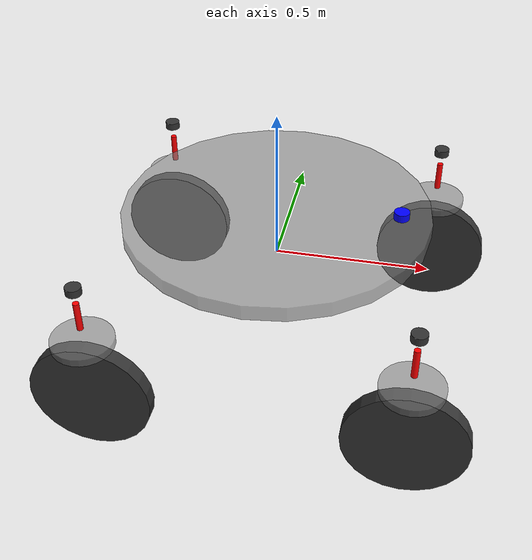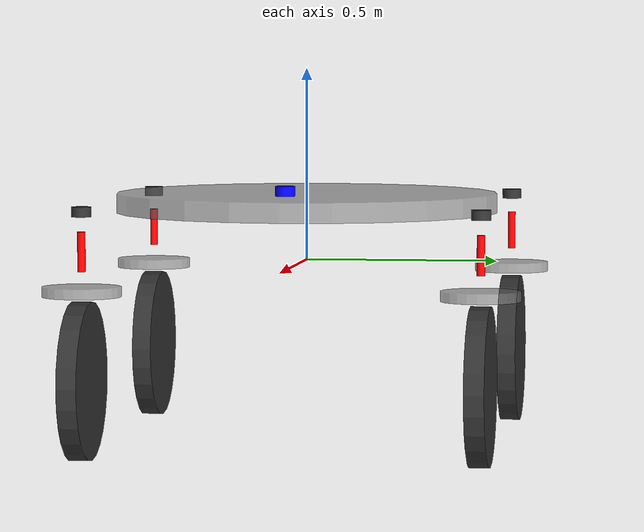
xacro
<?xml version="1.0"?>
<!-- 4WIDS vehicle model -->

<!-- Reference : https://qiita.com/Yuya-Shimizu/items/4bc097eafb870ba78432 -->
<robot xmlns:xacro="http://ros.org/wiki/xacro" name="four_wheel_independent_drive_and_steering_vehicle">

    <!-- # set parameters -->
    <xacro:property name="body_mass" value="50.0" />
    <xacro:property name="body_thickness" value="0.05" />
    <xacro:property name="tire_mass" value="5.0" />
    <xacro:property name="tire_radius" value="0.2" />
    <xacro:property name="tire_thickness" value="0.05" />
    <xacro:property name="l_f" value="0.5" />
    <xacro:property name="l_r" value="0.5" />
    <xacro:property name="d_l" value="0.5" />
    <xacro:property name="d_r" value="0.5" />
    <xacro:arg name="wheel_friction" default="0.8" />
    <xacro:property name="wheel_friction" value="$(arg wheel_friction)" />

    <!-- # define macros -->

    <!-- ## define material colors for URDF -->
    <material name="black">  <color rgba="0.2 0.2 0.2 1.0"/> </material>
    <material name="white">  <color rgba="1.0 1.0 1.0 1.0"/> </material>
    <material name="red">    <color rgba="1.0 0.0 0.0 1.0"/> </material>
    <material name="green">  <color rgba="0.0 1.0 0.0 1.0"/> </material>
    <material name="blue">   <color rgba="0.0 0.0 1.0 1.0"/> </material>
    <material name="yellow"> <color rgba="1.0 1.0 0.0 1.0"/> </material>
    <material name="cyan">   <color rgba="0.0 1.0 1.0 1.0"/> </material>
    <material name="purple"> <color rgba="1.0 0.0 1.0 1.0"/> </material>
    <material name="gray_a"> <color rgba="0.5 0.5 0.5 0.6"/> </material>

    <!-- ## macro for gazebo material settings -->
    <xacro:macro name="gazebo_material" params="ref mu *color">
        <gazebo reference="${ref}">
            <mu1>${mu}</mu1>
            <mu2>${mu}</mu2>
            <kp>1000000.0</kp>
            <kd>100.0</kd>
            <minDepth>0.001</minDepth>
        <xacro:insert_block name="color" />
        </gazebo>
    </xacro:macro>

    <!-- ## macro for generate link -->
    <xacro:macro name="link_generator" params="name mass color_name *shape *inertia">
        <link name="${name}">
            <visual>
                <geometry>
                    <xacro:insert_block name="shape" />
                </geometry>
                <material name="${color_name}"/>
            </visual>
            <collision>
                <geometry>
                    <xacro:insert_block name="shape" />
                </geometry>
            </collision>
            <inertial>
                <mass value="${mass}"/>
                        <xacro:insert_block name="inertia" />
            </inertial>
        </link>
    </xacro:macro>

    <!-- ## macro for setting fixed joints -->
    <xacro:macro name="fixed_joint" params="name parent child *origin">
        <joint name="${name}" type="fixed">
        <xacro:insert_block name="origin" />
        <parent link="${parent}"/>
        <child link="${child}"/>
        </joint>
    </xacro:macro>

    <!-- ## macro for setting continuous joints -->
    <xacro:macro name="continuous_joint" params="name parent child *origin *axis">
        <joint name="${name}_joint" type="continuous">
        <xacro:insert_block name="origin" />
        <parent link="${parent}"/>
        <child link="${child}"/>
        <xacro:insert_block name="axis" />
        </joint>
    </xacro:macro>

    <xacro:macro name="steer_joint" params="name parent child *origin *axis">
        <joint name="${name}_joint" type="continuous">
        <xacro:insert_block name="origin" />
        <parent link="${parent}"/>
        <child link="${child}"/>
        <xacro:insert_block name="axis" />
        </joint>

        <transmission name="${name}_trans">
        <type>transmission_interface/SimpleTransmission</type>
        <joint name="${name}_joint">
            <hardwareInterface>hardware_interface/PositionJointInterface</hardwareInterface>
        </joint>
        <actuator name="${name}_motor">
            <hardwareInterface>hardware_interface/PositionJointInterface</hardwareInterface>
            <mechanicalReduction>1</mechanicalReduction>
        </actuator>
        </transmission>
    </xacro:macro>

    <xacro:macro name="rotor_joint" params="name parent child *origin *axis">
        <joint name="${name}_joint" type="continuous">
        <xacro:insert_block name="origin" />
        <parent link="${parent}"/>
        <child link="${child}"/>
        <xacro:insert_block name="axis" />
        <dynamics damping="0.1"/>
        </joint>

        <transmission name="${name}_trans">
        <type>transmission_interface/SimpleTransmission</type>
        <joint name="${name}_joint">
            <hardwareInterface>hardware_interface/VelocityJointInterface</hardwareInterface>
        </joint>
        <actuator name="${name}_motor">
            <hardwareInterface>hardware_interface/VelocityJointInterface</hardwareInterface>
            <mechanicalReduction>1</mechanicalReduction>
        </actuator>
        </transmission>
    </xacro:macro>

    <xacro:macro name="sus_joint" params="name parent child *origin *axis">
        <joint name="${name}_joint" type="prismatic">
        <xacro:insert_block name="origin" />
        <parent link="${parent}"/>
        <child link="${child}"/>
        <limit lower="-0.02" upper="0.02" effort="100" velocity="1.0" />
        <xacro:insert_block name="axis" />
        <dynamics damping="0.1"/>
        </joint>
        <transmission name="${name}_trans">
        <type>transmission_interface/SimpleTransmission</type>
        <joint name="${name}_joint">
            <hardwareInterface>hardware_interface/EffortJointInterface</hardwareInterface>
        </joint>
        <actuator name="${name}_motor">
            <hardwareInterface>hardware_interface/EffortJointInterface</hardwareInterface>
            <mechanismReduction>1</mechanismReduction>
        </actuator>
        </transmission>
        <gazebo reference="${name}_joint">
        <kp>50000</kp>
        <kd>500</kd>
        </gazebo>
    </xacro:macro>

    <!-- ## macro for define a wheel unit -->
    <xacro:macro name="wheel_unit" params="name parent x_pos y_pos z_pos">

    <!-- ### wheel base link -->
	<xacro:link_generator name="${name}_wheel_base_link" mass="0.01" color_name="black">
        <cylinder radius="0.025" length="0.025" />
        <inertia ixx="0.01" iyy="0.01" izz="0.01" ixy="0" ixz="0" iyz="0"/>
	</xacro:link_generator>
    <xacro:gazebo_material ref="${name}_wheel_base_link" mu="${wheel_friction}">
		<material>Gazebo/Black</material>
    </xacro:gazebo_material>
	<xacro:fixed_joint name="${name}_wheel_joint" parent="${parent}" child="${name}_wheel_base_link">
        <origin xyz="${x_pos} ${y_pos} ${z_pos}" rpy="0 0 0"/>
	</xacro:fixed_joint>

    <!-- ### wheel suspension -->
	<xacro:link_generator name="${name}_wheel_suspension" mass="0.01" color_name="red">
		<cylinder radius="0.01" length="0.1"/>
        <inertia ixx="0.01" iyy="0.01" izz="0.01" ixy="0" ixz="0" iyz="0"/>
	</xacro:link_generator>
    <xacro:gazebo_material ref="${name}_wheel_suspension" mu="${wheel_friction}">
		<material>Gazebo/Red</material>
    </xacro:gazebo_material>
    <xacro:sus_joint name="${name}_wheel_suspension" parent="${name}_wheel_base_link" child="${name}_wheel_suspension">
        <origin xyz="0.0 0.0 -0.1" rpy="0 0 0"/>
        <axis xyz="0 0 1"/>
    </xacro:sus_joint>

    <!-- ### wheel steering -->
	<xacro:link_generator name="${name}_wheel_steer" mass="0.01" color_name="gray_a">
		<cylinder radius="${tire_radius/2.0}" length="${tire_thickness/2.0}"/>
        <inertia ixx="0.01" iyy="0.01" izz="0.01" ixy="0" ixz="0" iyz="0"/>
	</xacro:link_generator>
    <xacro:gazebo_material ref="${name}_wheel_steer" mu="${wheel_friction}">
		<material>Gazebo/GreyTransparent</material>
    </xacro:gazebo_material>
	<xacro:steer_joint name="${name}_wheel_steer" parent="${name}_wheel_suspension" child="${name}_wheel_steer">
        <origin xyz="0.0 0.0 -0.1" rpy="0 0 0"/>
        <axis xyz="0 0 1"/>
	</xacro:steer_joint>

    <!-- ### wheel rotor -->
	<xacro:link_generator name="${name}_wheel_rotor" mass="${tire_mass}" color_name="black">
		<cylinder radius="${tire_radius}" length="${tire_thickness}"/>
        <inertia ixx="0.0029167" iyy="0.0029167" izz="0.0056250" ixy="0" ixz="0" iyz="0"/>
	</xacro:link_generator>
    <xacro:gazebo_material ref="${name}_wheel_rotor" mu="${wheel_friction}">
		<material>Gazebo/DarkGrey</material>
    </xacro:gazebo_material>
	<xacro:rotor_joint name="${name}_wheel_rotor" parent="${name}_wheel_steer" child="${name}_wheel_rotor">
        <origin xyz="0 0 ${-tire_radius-0.025}" rpy="-1.57 0 0"/>
        <axis xyz="0 0 1"/>
	</xacro:rotor_joint>

    </xacro:macro>

    <!-- # generate links -->

    <!-- ## base_link -->
    <link name="base_link" />

    <!-- ## vehicle body link -->
	<xacro:link_generator name="body" mass="${body_mass}" color_name="gray_a">
        <cylinder radius="${(l_f + l_r) * 0.5}" length="${body_thickness}" />
        <inertia ixx="0.0118750" iyy="0.0118750" izz="0.0200000" ixy="0" ixz="0" iyz="0"/>
	</xacro:link_generator>
    <xacro:gazebo_material ref="body" mu="0.8">
		<material>Gazebo/GreyTransparent</material>
    </xacro:gazebo_material>

    <!-- ## 2d lidar link -->
	<xacro:link_generator name="laser_link" mass="0.0" color_name="blue">
        <cylinder radius="0.025" length="0.025" />
        <inertia ixx="0" iyy="0" izz="0" ixy="0" ixz="0" iyz="0"/>
	</xacro:link_generator>
    <xacro:gazebo_material ref="laser_link" mu="0.8">
		<material>Gazebo/Blue</material>
    </xacro:gazebo_material>

    <!-- # generate joints -->

    <!-- ## vehicle body joint -->
	<xacro:fixed_joint name="base_joint" parent="base_link" child="body">
        <origin xyz="0 0 0.15" rpy="0 0 0"/>
	</xacro:fixed_joint>

    <!-- ## 2d lidar joint -->
	<xacro:fixed_joint name="laser_joint" parent="body" child="laser_link">
        <origin xyz="${(l_f + l_r) * 0.5 * 0.8} 0 ${body_thickness/2.0 + 0.025}" rpy="0 0 0"/>
	</xacro:fixed_joint>

    <!-- # generate wheel units -->
    <xacro:wheel_unit name="front_left"  parent="body" x_pos="${l_f}"  y_pos="${d_l}"  z_pos="0.0" />
    <xacro:wheel_unit name="front_right" parent="body" x_pos="${l_f}"  y_pos="${-d_l}" z_pos="0.0" />
    <xacro:wheel_unit name="rear_left"   parent="body" x_pos="${-l_f}" y_pos="${d_l}"  z_pos="0.0" />
    <xacro:wheel_unit name="rear_right"  parent="body" x_pos="${-l_f}" y_pos="${-d_l}" z_pos="0.0" />

    <!-- # gazebo settings -->

    <!-- ## import plugin "gazebo_ros_control" -->
    <gazebo>
        <plugin name="gazebo_ros_control" filename="libgazebo_ros_control.so">
        <robotNamespace>/fwids</robotNamespace>
        </plugin>
    </gazebo>

    <!-- ## activate laser -->
    <gazebo reference="laser_link">
      <material>Gazebo/Blue</material>
      <sensor type="ray" name="laser">
        <pose>0 0 0 0 0 0</pose>
        <visualize>false</visualize>
        <update_rate>10</update_rate>
        <ray>
          <scan>
            <horizontal>
              <samples>800</samples>
              <resolution>1</resolution>
              <min_angle>${radians(-180)}</min_angle>
              <max_angle>${radians( 180)}</max_angle>
            </horizontal>
          </scan>
          <range>
            <min>0.05</min>
            <max>30.0</max>
            <resolution>0.01</resolution>
          </range>
          <noise>
            <type>gaussian</type>
            <mean>0.0</mean>
            <stddev>0.01</stddev>
          </noise>
        </ray>
        <plugin name="gazebo_ros_lidar_controller" filename="libgazebo_ros_laser.so">
          <topicName>/laser_link/scan</topicName>
          <frameName>laser_link</frameName>
        </plugin>
      </sensor>
    </gazebo>

    <!-- ## publish true odometry value -->
    <gazebo>
      <plugin name="groundtruth" filename="libgazebo_ros_p3d.so">
          <alwaysOn>true</alwaysOn>
          <updateRate>50.0</updateRate>
          <bodyName>base_link</bodyName>
          <topicName>groundtruth_odom</topicName>
          <frameName>map</frameName>
          <xyzOffsets>0 0 0</xyzOffsets>
          <rpyOffsets>0 0 0</rpyOffsets>
          <gaussianNoise>0.02</gaussianNoise>
      </plugin>
    </gazebo>

</robot>
